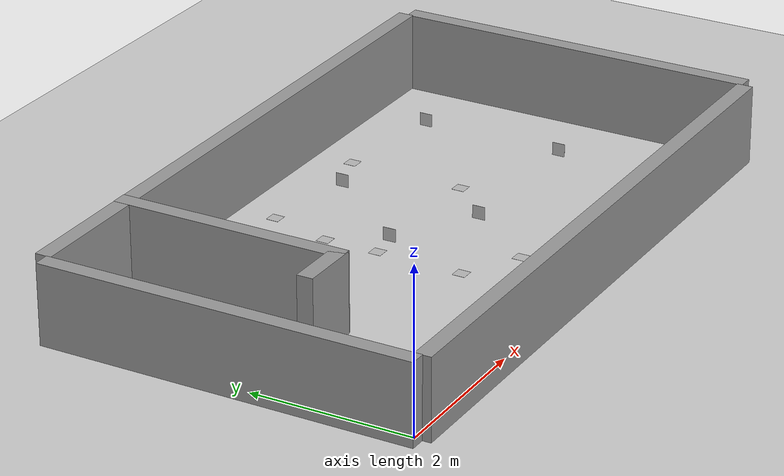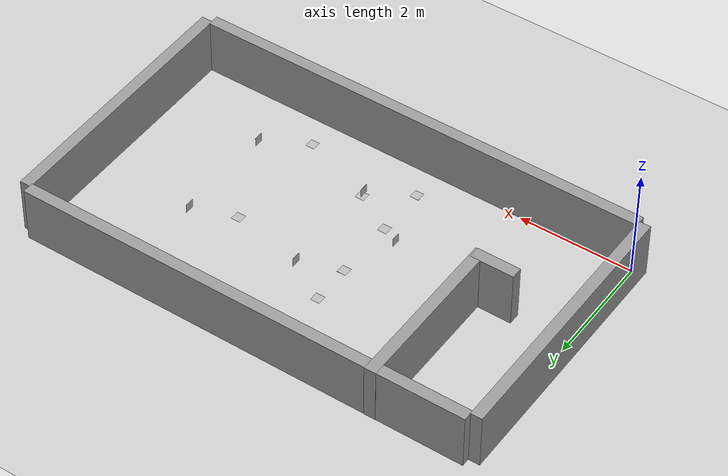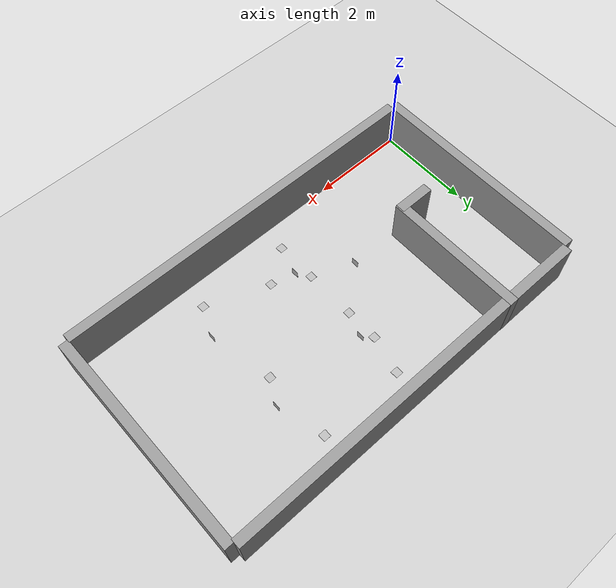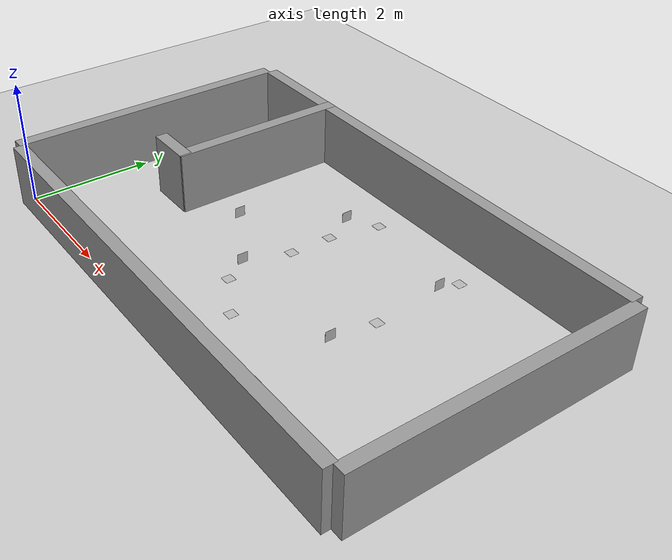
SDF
<sdf version="1.6">
 <world name="default">
  <model name="ground_plane">
   <static>1</static>
   <link name="link">
    <collision name="collision">
     <geometry><plane><normal>0 0 1</normal><size>100 100</size></plane></geometry>
     <surface><friction><ode><mu>100</mu><mu2>50</mu2></ode></friction></surface>
    </collision>
    <visual name="visual">
     <cast_shadows>0</cast_shadows>
     <geometry><plane><normal>0 0 1</normal><size>100 100</size></plane></geometry>
     <material>
      <script><uri>file://media/materials/scripts/gazebo.material</uri><name>Gazebo/Grey</name></script>
     </material>
    </visual>
   </link>
  </model>
  <light name="sun" type="directional">
   <pose>0 0 10 0 -0 0</pose>
   <diffuse>0.8 0.8 0.8 1</diffuse>
   <specular>0.1 0.1 0.1 1</specular>
   <attenuation>
    <range>1000</range>
    <constant>0.9</constant>
    <linear>0.01</linear>
    <quadratic>0.001</quadratic>
   </attenuation>
   <direction>-0.5 0.5 -1</direction>
  </light>
  <gravity>0 0 -9.8</gravity>
  <magnetic_field>6e-06 2.3e-05 -4.2e-05</magnetic_field>
  <atmosphere type="adiabatic"/>
  <physics name="default_physics" default="0" type="ode">
   <max_step_size>0.001</max_step_size>
   <real_time_factor>1</real_time_factor>
   <real_time_update_rate>1000</real_time_update_rate>
  </physics>
  <scene><ambient>0.4 0.4 0.4 1</ambient><background>0.7 0.7 0.7 1</background><shadows>1</shadows></scene>
  <spherical_coordinates>
   <surface_model>EARTH_WGS84</surface_model>
   <latitude_deg>0</latitude_deg>
   <longitude_deg>0</longitude_deg>
   <elevation>0</elevation>
   <heading_deg>0</heading_deg>
  </spherical_coordinates>
  <model name="wall1">
   <pose>3.9941 -0.105576 0.499996 1e-06 -9e-06 -2.7e-05</pose>
   <link name="link">
    <inertial>
     <mass>1</mass>
     <inertia>
      <ixx>0.166667</ixx>
      <ixy>0</ixy>
      <ixz>0</ixz>
      <iyy>0.166667</iyy>
      <iyz>0</iyz>
      <izz>0.166667</izz>
     </inertia>
    </inertial>
    <collision name="collision"><geometry><box><size>1 0.253488 1</size></box></geometry></collision>
    <visual name="visual">
     <geometry><box><size>8 0.202792 1</size></box></geometry>
     <material>
      <script><name>Gazebo/Grey</name><uri>file://media/materials/scripts/gazebo.material</uri></script>
     </material>
    </visual>
   </link>
  </model>
  <model name="wall2">
   <pose>4.00059 4.60004 0.499996 1e-06 -9e-06 1.7e-05</pose>
   <link name="link">
    <inertial>
     <mass>1</mass>
     <inertia>
      <ixx>0.166667</ixx>
      <ixy>0</ixy>
      <ixz>0</ixz>
      <iyy>0.166667</iyy>
      <iyz>0</iyz>
      <izz>0.166667</izz>
     </inertia>
    </inertial>
    <collision name="collision"><geometry><box><size>1 0.253489 1</size></box></geometry></collision>
    <visual name="visual">
     <geometry><box><size>8 0.202792 1</size></box></geometry>
     <material>
      <script><name>Gazebo/Grey</name><uri>file://media/materials/scripts/gazebo.material</uri></script>
     </material>
    </visual>
   </link>
  </model>
  <model name="wall4">
   <pose>-0.094949 2.22837 0.500001 1e-06 -2e-06 1.57016</pose>
   <link name="link">
    <inertial>
     <mass>1</mass>
     <inertia>
      <ixx>0.166667</ixx>
      <ixy>0</ixy>
      <ixz>0</ixz>
      <iyy>0.166667</iyy>
      <iyz>0</iyz>
      <izz>0.166667</izz>
     </inertia>
    </inertial>
    <collision name="collision"><geometry><box><size>0.582354 0.253489 1</size></box></geometry></collision>
    <visual name="visual">
     <geometry><box><size>4.65884 0.202792 1</size></box></geometry>
     <material>
      <script><name>Gazebo/Grey</name><uri>file://media/materials/scripts/gazebo.material</uri></script>
     </material>
    </visual>
   </link>
  </model>
  <model name="wall3">
   <pose>8.08033 2.24771 0.500001 -0 -2e-06 1.57082</pose>
   <link name="link">
    <inertial>
     <mass>1</mass>
     <inertia>
      <ixx>0.166667</ixx>
      <ixy>0</ixy>
      <ixz>0</ixz>
      <iyy>0.166667</iyy>
      <iyz>0</iyz>
      <izz>0.166667</izz>
     </inertia>
    </inertial>
    <collision name="collision"><geometry><box><size>0.579982 0.253489 1</size></box></geometry></collision>
    <visual name="visual">
     <geometry><box><size>4.63986 0.202792 1</size></box></geometry>
     <material>
      <script><name>Gazebo/Grey</name><uri>file://media/materials/scripts/gazebo.material</uri></script>
     </material>
    </visual>
   </link>
  </model>
  <model name="wall4_clone">
   <pose>1.62196 3.23918 0.5 -2e-06 -1e-06 1.5703</pose>
   <link name="link">
    <inertial>
     <mass>1</mass>
     <inertia>
      <ixx>0.166667</ixx>
      <ixy>0</ixy>
      <ixz>0</ixz>
      <iyy>0.166667</iyy>
      <iyz>0</iyz>
      <izz>0.166667</izz>
     </inertia>
    </inertial>
    <collision name="collision"><geometry><box><size>0.366563 0.253489 1</size></box></geometry></collision>
    <visual name="visual">
     <geometry><box><size>2.9325 0.202792 1</size></box></geometry>
     <material>
      <script><name>Gazebo/Grey</name><uri>file://media/materials/scripts/gazebo.material</uri></script>
     </material>
    </visual>
   </link>
  </model>
  <model name="wall4_clone_clone">
   <pose>1.31462 1.8646 0.5 -2e-06 -1e-06 -9.1e-05</pose>
   <link name="link">
    <inertial>
     <mass>1</mass>
     <inertia>
      <ixx>0.166667</ixx>
      <ixy>0</ixy>
      <ixz>0</ixz>
      <iyy>0.166667</iyy>
      <iyz>0</iyz>
      <izz>0.166667</izz>
     </inertia>
    </inertial>
    <collision name="collision"><geometry><box><size>0.0949839 0.253489 1</size></box></geometry></collision>
    <visual name="visual">
     <geometry><box><size>0.759872 0.202792 1</size></box></geometry>
     <material>
      <script><name>Gazebo/Grey</name><uri>file://media/materials/scripts/gazebo.material</uri></script>
     </material>
    </visual>
   </link>
  </model>
  <model name="Tag1">
   <static>1</static>
   <link name="link">
    <pose>0 0 0.1 0 -0 1.57</pose>
    <collision name="collision"><geometry><box><size>0.1615 0.001 0.1615</size></box></geometry></collision>
    <visual name="visual">
     <cast_shadows>0</cast_shadows>
     <geometry><box><size>0.1615 0.001 0.1615</size></box></geometry>
     <material>
      <script>
       <uri>model://Tag1/materials/scripts</uri>
       <uri>model://Tag1/materials/textures</uri>
       <name>vrc/Tag1</name>
      </script>
     </material>
    </visual>
   </link>
   <pose>4 3.2 0.5 0 -0 0</pose>
  </model>
  <model name="Tag2">
   <static>1</static>
   <link name="link">
    <pose>0 0 0.1 0 -0 1.57</pose>
    <collision name="collision"><geometry><box><size>0.1615 0.001 0.1615</size></box></geometry></collision>
    <visual name="visual">
     <cast_shadows>0</cast_shadows>
     <geometry><box><size>0.1615 0.001 0.1615</size></box></geometry>
     <material>
      <script>
       <uri>model://Tag2/materials/scripts</uri>
       <uri>model://Tag2/materials/textures</uri>
       <name>vrc/Tag2</name>
      </script>
     </material>
    </visual>
   </link>
   <pose>6 1.4 0.5 0 -0 0</pose>
  </model>
  <model name="Tag3">
   <static>1</static>
   <link name="link">
    <pose>0 0 0.1 0 -0 1.57</pose>
    <collision name="collision"><geometry><box><size>0.1615 0.001 0.1615</size></box></geometry></collision>
    <visual name="visual">
     <cast_shadows>0</cast_shadows>
     <geometry><box><size>0.1615 0.001 0.1615</size></box></geometry>
     <material>
      <script>
       <uri>model://Tag3/materials/scripts</uri>
       <uri>model://Tag3/materials/textures</uri>
       <name>vrc/Tag3</name>
      </script>
     </material>
    </visual>
   </link>
   <pose>6 3.2 0.5 0 -0 0</pose>
  </model>
  <model name="Tag4">
   <static>1</static>
   <link name="link">
    <pose>0 0 0.1 0 -0 1.57</pose>
    <collision name="collision"><geometry><box><size>0.1615 0.001 0.1615</size></box></geometry></collision>
    <visual name="visual">
     <cast_shadows>0</cast_shadows>
     <geometry><box><size>0.1615 0.001 0.1615</size></box></geometry>
     <material>
      <script>
       <uri>model://Tag4/materials/scripts</uri>
       <uri>model://Tag4/materials/textures</uri>
       <name>vrc/Tag4</name>
      </script>
     </material>
    </visual>
   </link>
   <pose>3 2 0.5 0 -0 0</pose>
  </model>
  <model name="Tag5">
   <static>1</static>
   <link name="link">
    <pose>0 0 0.1 0 -0 1.57</pose>
    <collision name="collision"><geometry><box><size>0.1615 0.001 0.1615</size></box></geometry></collision>
    <visual name="visual">
     <cast_shadows>0</cast_shadows>
     <geometry><box><size>0.1615 0.001 0.1615</size></box></geometry>
     <material>
      <script>
       <uri>model://Tag5/materials/scripts</uri>
       <uri>model://Tag5/materials/textures</uri>
       <name>vrc/Tag5</name>
      </script>
     </material>
    </visual>
   </link>
   <pose>4.2 1 0.000421 0.001666 1.57 0.00167</pose>
  </model>
  <model name="Tag6">
   <static>1</static>
   <link name="link">
    <pose>0 0 0.1 0 -0 1.57</pose>
    <collision name="collision"><geometry><box><size>0.1615 0.001 0.1615</size></box></geometry></collision>
    <visual name="visual">
     <cast_shadows>0</cast_shadows>
     <geometry><box><size>0.1615 0.001 0.1615</size></box></geometry>
     <material>
      <script>
       <uri>model://Tag6/materials/scripts</uri>
       <uri>model://Tag6/materials/textures</uri>
       <name>vrc/Tag6</name>
      </script>
     </material>
    </visual>
   </link>
   <pose>5.5 0.5 0.01 0.00041 1.57 0.000414</pose>
  </model>
  <model name="Tag7">
   <static>1</static>
   <link name="link">
    <pose>0 0 0.1 0 -0 1.57</pose>
    <collision name="collision"><geometry><box><size>0.1615 0.001 0.1615</size></box></geometry></collision>
    <visual name="visual">
     <cast_shadows>0</cast_shadows>
     <geometry><box><size>0.1615 0.001 0.1615</size></box></geometry>
     <material>
      <script>
       <uri>model://Tag7/materials/scripts</uri>
       <uri>model://Tag7/materials/textures</uri>
       <name>vrc/Tag7</name>
      </script>
     </material>
    </visual>
   </link>
   <pose>5.5 2.5 0.01 0.00041 1.57 0.000414</pose>
  </model>
  <model name="Tag8">
   <static>1</static>
   <link name="link">
    <pose>0 0 0.1 0 -0 1.57</pose>
    <collision name="collision"><geometry><box><size>0.1615 0.001 0.1615</size></box></geometry></collision>
    <visual name="visual">
     <cast_shadows>0</cast_shadows>
     <geometry><box><size>0.1615 0.001 0.1615</size></box></geometry>
     <material>
      <script>
       <uri>model://Tag8/materials/scripts</uri>
       <uri>model://Tag8/materials/textures</uri>
       <name>vrc/Tag8</name>
      </script>
     </material>
    </visual>
   </link>
   <pose>5.5 4 0.01 0.00041 1.57 0.000414</pose>
  </model>
  <model name="Tag9">
   <static>1</static>
   <link name="link">
    <pose>0 0 0.1 0 -0 1.57</pose>
    <collision name="collision"><geometry><box><size>0.1615 0.001 0.1615</size></box></geometry></collision>
    <visual name="visual">
     <cast_shadows>0</cast_shadows>
     <geometry><box><size>0.1615 0.001 0.1615</size></box></geometry>
     <material>
      <script>
       <uri>model://Tag9/materials/scripts</uri>
       <uri>model://Tag9/materials/textures</uri>
       <name>vrc/Tag9</name>
      </script>
     </material>
    </visual>
   </link>
   <pose>3.5 2.5 0.01 0.001666 1.57 0.00167</pose>
  </model>
  <model name="Tag10">
   <static>1</static>
   <link name="link">
    <pose>0 0 0.1 0 -0 1.57</pose>
    <collision name="collision"><geometry><box><size>0.1615 0.001 0.1615</size></box></geometry></collision>
    <visual name="visual">
     <cast_shadows>0</cast_shadows>
     <geometry><box><size>0.1615 0.001 0.1615</size></box></geometry>
     <material>
      <script>
       <uri>model://Tag10/materials/scripts</uri>
       <uri>model://Tag10/materials/textures</uri>
       <name>vrc/Tag10</name>
      </script>
     </material>
    </visual>
   </link>
   <pose>3.7 4 0.01 0.001666 1.57 0.00167</pose>
  </model>
  <model name="Tag0">
   <static>1</static>
   <link name="link">
    <pose>0 0 0.1 0 -0 1.57</pose>
    <collision name="collision"><geometry><box><size>0.1615 0.001 0.1615</size></box></geometry></collision>
    <visual name="visual">
     <cast_shadows>0</cast_shadows>
     <geometry><box><size>0.1615 0.001 0.1615</size></box></geometry>
     <material>
      <script>
       <uri>model://Tag0/materials/scripts</uri>
       <uri>model://Tag0/materials/textures</uri>
       <name>vrc/Tag0</name>
      </script>
     </material>
    </visual>
   </link>
   <pose>4 1.4 0.5 0 -0 0</pose>
  </model>
  <model name="Tag11">
   <static>1</static>
   <link name="link">
    <pose>0 0 0.1 0 -0 1.57</pose>
    <collision name="collision"><geometry><box><size>0.1615 0.001 0.1615</size></box></geometry></collision>
    <visual name="visual">
     <cast_shadows>0</cast_shadows>
     <geometry><box><size>0.1615 0.001 0.1615</size></box></geometry>
     <material>
      <script>
       <uri>model://Tag11/materials/scripts</uri>
       <uri>model://Tag11/materials/textures</uri>
       <name>vrc/Tag11</name>
      </script>
     </material>
    </visual>
   </link>
   <pose>3.5 1.4 0 0.00041 1.57 0.000414</pose>
  </model>
  <model name="Tag12">
   <static>1</static>
   <link name="link">
    <pose>0 0 0.1 0 -0 1.57</pose>
    <collision name="collision"><geometry><box><size>0.1615 0.001 0.1615</size></box></geometry></collision>
    <visual name="visual">
     <cast_shadows>0</cast_shadows>
     <geometry><box><size>0.1615 0.001 0.1615</size></box></geometry>
     <material>
      <script>
       <uri>model://Tag12/materials/scripts</uri>
       <uri>model://Tag12/materials/textures</uri>
       <name>vrc/Tag12</name>
      </script>
     </material>
    </visual>
   </link>
   <pose>3.5 3.2 0 0.00041 1.57 0.000414</pose>
  </model>
  <model name="Tag13">
   <static>1</static>
   <link name="link">
    <pose>0 0 0.1 0 -0 1.57</pose>
    <collision name="collision"><geometry><box><size>0.1615 0.001 0.1615</size></box></geometry></collision>
    <visual name="visual">
     <cast_shadows>0</cast_shadows>
     <geometry><box><size>0.1615 0.001 0.1615</size></box></geometry>
     <material>
      <script>
       <uri>model://Tag13/materials/scripts</uri>
       <uri>model://Tag13/materials/textures</uri>
       <name>vrc/Tag13</name>
      </script>
     </material>
    </visual>
   </link>
   <pose>3.5 0.5 0 0 1.57 0</pose>
  </model>
 </world>
</sdf>
